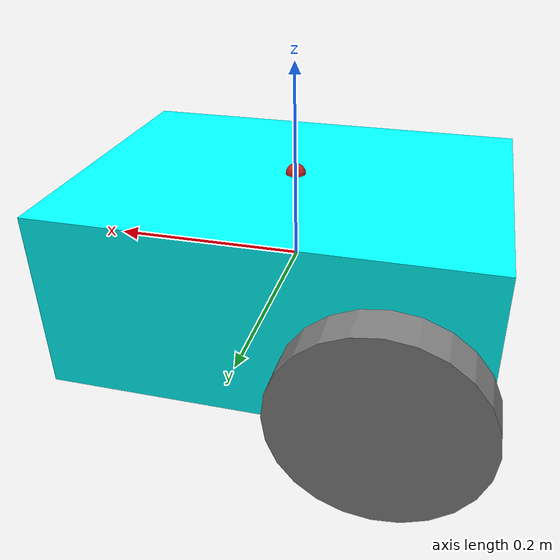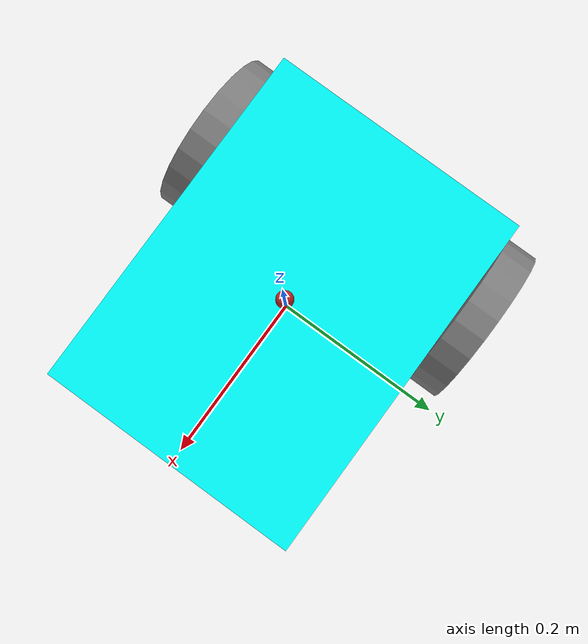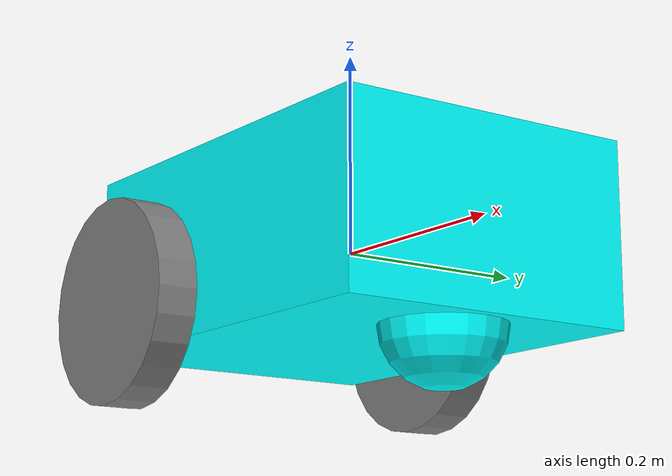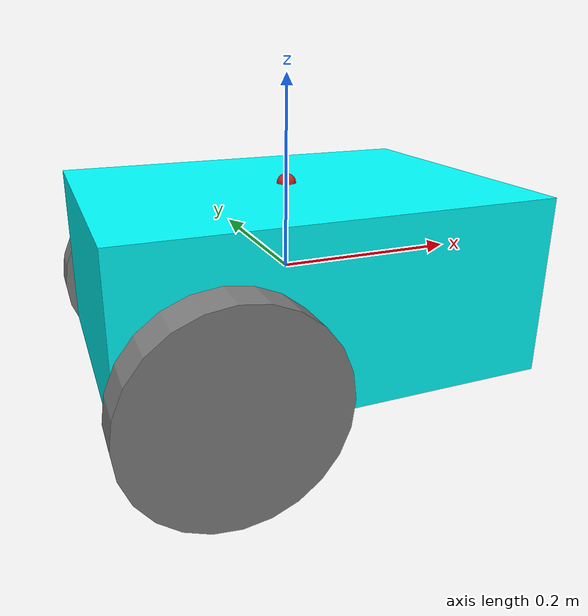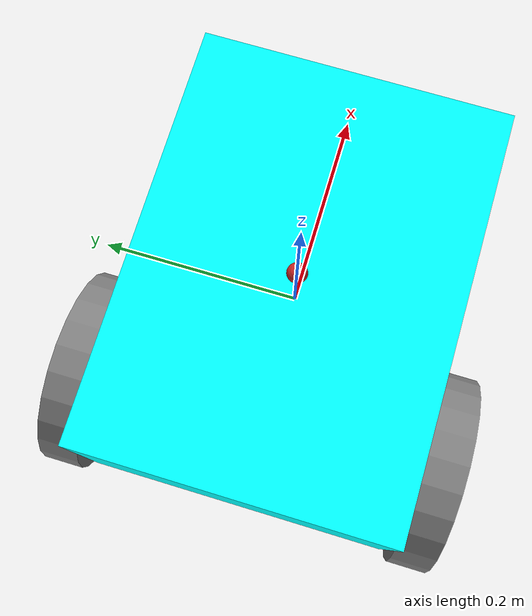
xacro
<?xml version="1.0"?>
<robot name="diff_robot" xmlns:xacro="http://www.ros.org/wiki/xacro">

    <!-- Include inertias -->
    <xacro:include filename="inertias.xacro"/>
    <xacro:include filename="gazebo_plugs.xacro"/>
    <!-- Define robot constants -->
    <xacro:property name="base_width" value="0.31"/>
    <xacro:property name="base_length" value="0.42"/>
    <xacro:property name="base_height" value="0.18"/>

    <xacro:property name="wheel_radius" value="0.10"/>
    <xacro:property name="wheel_width" value="0.04"/>
    <xacro:property name="wheel_ygap" value="0.025"/>
    <xacro:property name="wheel_zoff" value="0.05"/>
    <xacro:property name="wheel_xoff" value="0.12"/>

    <xacro:property name="caster_xoff" value="0.14"/>

    <!-- Robot Base -->
    <link name="base_link">
      <visual>
          <geometry>
            <box size="${base_length} ${base_width} ${base_height}"/>
          </geometry>
          <material name="Cyan">
            <color rgba="0 1.0 1.0 1.0"/>
          </material>
      </visual>
      <collision>
        <geometry>
          <box size="${base_length} ${base_width} ${base_height}"/>
        </geometry>
      </collision>

      <xacro:box_inertia m="1" w="${base_width}" d="${base_length}" h="${base_height}"/>
    </link>

    <!-- Robot Footprint -->
    <link name="base_footprint"/>

    <joint name="base_joint" type="fixed">
        <parent link="base_link"/>
        <child link="base_footprint"/>
        <origin xyz="0.0 0.0 ${-(wheel_radius+wheel_zoff)}" rpy="0 0 0"/>
    </joint>

    <!-- Wheels -->
    <xacro:macro name="wheel" params="prefix x_reflect y_reflect">
    <link name="${prefix}_link">
      <visual>
        <origin xyz="0 0 0" rpy="${pi/2} 0 0"/>
        <geometry>
            <cylinder radius="${wheel_radius}" length="${wheel_width}"/>
        </geometry>
        <material name="Gray">
            <color rgba="0.5 0.5 0.5 1.0"/>
        </material>
      </visual>
      <collision>
        <origin xyz="0 0 0" rpy="${pi/2} 0 0"/>
        <geometry>
          <cylinder radius="${wheel_radius}" length="${wheel_width}"/>
        </geometry>
      </collision>

      <xacro:cylinder_inertia m="2.0" r="${wheel_radius}" h="${wheel_width}"/>
    </link>

    <joint name="${prefix}_joint" type="continuous">
      <parent link="base_link"/>
      <child link="${prefix}_link"/>
      <origin xyz="${x_reflect*wheel_xoff} ${y_reflect*(base_width/2+wheel_ygap)} ${-wheel_zoff}" rpy="0 0 0"/>
      <axis xyz="0 1 0"/>
    </joint>
  </xacro:macro>

  <xacro:wheel prefix="drivewhl_l" x_reflect="-1" y_reflect="1" />
  <xacro:wheel prefix="drivewhl_r" x_reflect="-1" y_reflect="-1" />

    <!-- Caster Wheel -->
  <link name="front_caster">
    <visual>
      <geometry>
        <sphere radius="${(wheel_radius+wheel_zoff-(base_height/2))}"/>
      </geometry>
      <material name="Cyan">
        <color rgba="0 1.0 1.0 1.0"/>
      </material>
    </visual>
    <collision>
      <origin xyz="0 0 0" rpy="0 0 0"/>
      <geometry>
        <sphere radius="${(wheel_radius+wheel_zoff-(base_height/2))}"/>
      </geometry>
      <surface>
        <friction>
          <ode>
            <mu>0</mu>
            <mu2>0</mu2>
            <slip1>1.0</slip1>
            <slip2>1.0</slip2>
          </ode>
        </friction>
      </surface>
    </collision>

    <xacro:sphere_inertia m="0.2" r="${(wheel_radius+wheel_zoff-(base_height/2))}"/>
  </link>

  <joint name="caster_joint" type="fixed">
    <parent link="base_link"/>
    <child link="front_caster"/>
    <origin xyz="${caster_xoff} 0.0 ${-(base_height/2)}" rpy="0 0 0"/>
  </joint>

  <!-- Camera link -->
  <link name="camera_link">
      <visual>
          <origin xyz="0 0 0"/>
          <geometry>
              <sphere radius="0.01"/>
          </geometry>
          <material name="red"/>
      </visual>
      <collision>
          <geometry>
              <sphere radius="0.01"/>
          </geometry>
      </collision>
      <inertial>
          <mass value="1e-5"/>
          <inertia ixx="1e-6" ixy="0" ixz="0" iyy="1e-6" iyz="0" izz="1e-6"/>
      </inertial>
  </link>

  <!-- Fixed joint -->
  <joint name="camera_joint" type="fixed">
      <origin xyz="0.0 0 ${base_height/2}" rpy="0 0 0"/>  <!-- TODO fix origin -->
      <parent link="base_link"/>
      <child link="camera_link"/>
  </joint>

</robot>

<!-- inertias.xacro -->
<robot xmlns:xacro="http://www.ros.org/wiki/xacro" >
  <!-- Define intertial property macros  -->
  <xacro:macro name="box_inertia" params="m w h d">
    <inertial>
      <origin xyz="0 0 0" rpy="${pi/2} 0 ${pi/2}"/>
      <mass value="${m}"/>
      <inertia ixx="${(m/12) * (h*h + d*d)}" ixy="0.0" ixz="0.0" iyy="${(m/12) * (w*w + d*d)}" iyz="0.0" izz="${(m/12) * (w*w + h*h)}"/>
    </inertial>
  </xacro:macro>

  <xacro:macro name="cylinder_inertia" params="m r h">
    <inertial>
      <origin xyz="0 0 0" rpy="${pi/2} 0 0" />
      <mass value="${m}"/>
      <inertia ixx="${(m/12) * (3*r*r + h*h)}" ixy = "0" ixz = "0" iyy="${(m/12) * (3*r*r + h*h)}" iyz = "0" izz="${(m/2) * (r*r)}"/>
    </inertial>
  </xacro:macro>

  <xacro:macro name="sphere_inertia" params="m r">
    <inertial>
      <mass value="${m}"/>
      <inertia ixx="${(2/5) * m * (r*r)}" ixy="0.0" ixz="0.0" iyy="${(2/5) * m * (r*r)}" iyz="0.0" izz="${(2/5) * m * (r*r)}"/>
    </inertial>
  </xacro:macro>
</robot>
